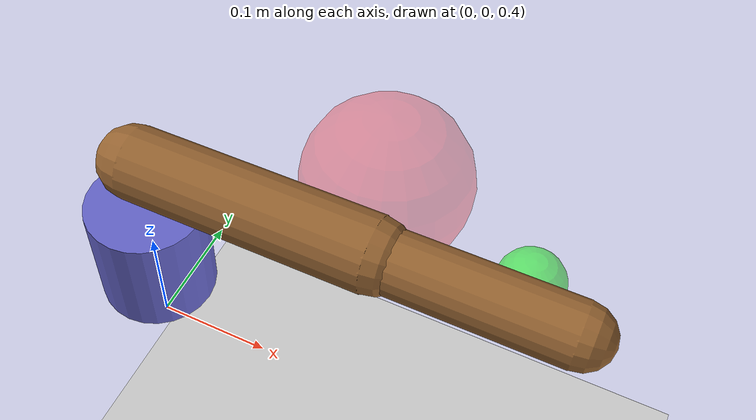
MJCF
<mujoco model="simple_reacher">
  <compiler autolimits="true"/>
  <option timestep="0.01" gravity="0 0 -9.81"/>

  <worldbody>
    <light name="top" pos="0 0 2" dir="0 0 -1" diffuse=".8 .8 .8"/>
    <geom name="floor" type="plane" size="2 2 0.1" rgba=".8 .8 .8 1"/>

    <body name="base" pos="0 0 0.5">
      <geom type="cylinder" size="0.05 0.05" rgba=".4 .4 .8 1"/>
      <joint name="joint1" type="hinge" axis="0 0 1" range="-3.14 3.14"/>

      <body name="upper_arm" pos="0 0 0.1">
        <geom type="capsule" fromto="0 0 0 0.2 0 0" size="0.03" rgba=".6 .4 .2 1"/>
        <joint name="joint2" type="hinge" axis="0 1 0" range="-3.14 3.14"/>

        <body name="lower_arm" pos="0.2 0 0">
          <geom type="capsule" fromto="0 0 0 0.15 0 0" size="0.025" rgba=".6 .4 .2 1"/>
          <joint name="joint3" type="hinge" axis="0 1 0" range="-3.14 3.14"/>
          <site name="end_effector" pos="0.15 0 0" size="0.02" rgba="1 0 0 1"/>
        </body>
      </body>
    </body>

    <site name="target" pos="0.3 0.1 0.5" size="0.03" rgba="0 1 0 0.5"/>
    <geom name="hazard1" type="sphere" pos="0.15 0.15 0.5" size="0.08" rgba="1 0 0 0.3"/>
  </worldbody>

  <actuator>
    <motor joint="joint1" name="act1" ctrlrange="-1 1" gear="50"/>
    <motor joint="joint2" name="act2" ctrlrange="-1 1" gear="50"/>
    <motor joint="joint3" name="act3" ctrlrange="-1 1" gear="50"/>
  </actuator>
</mujoco>
